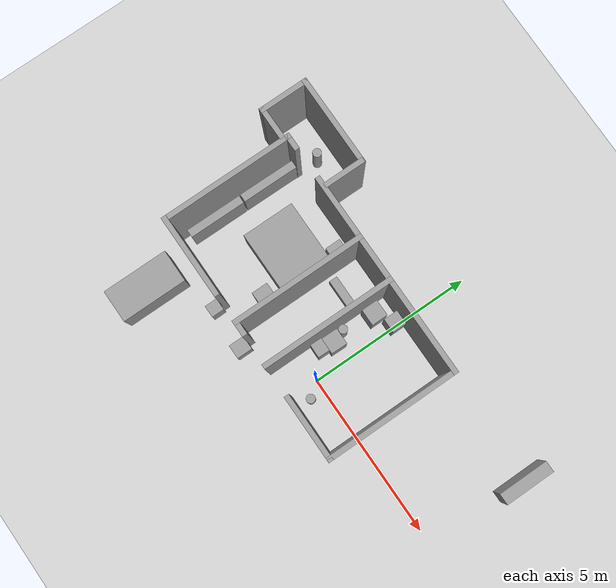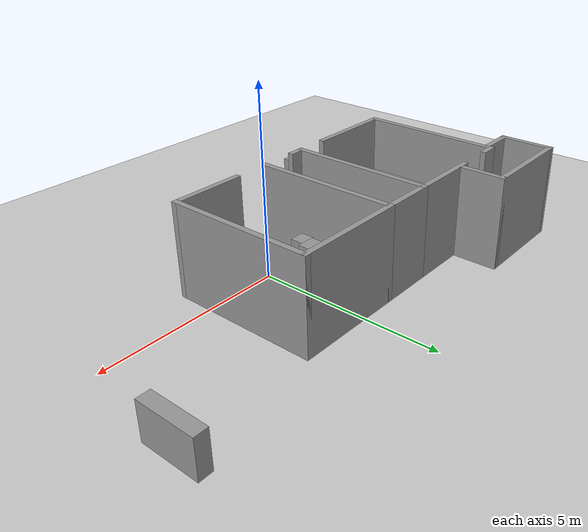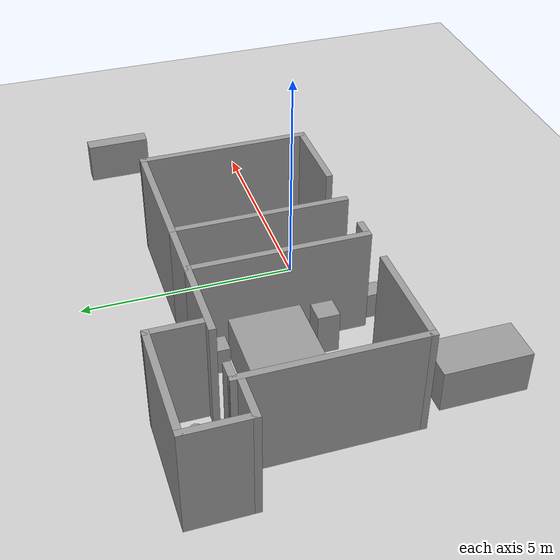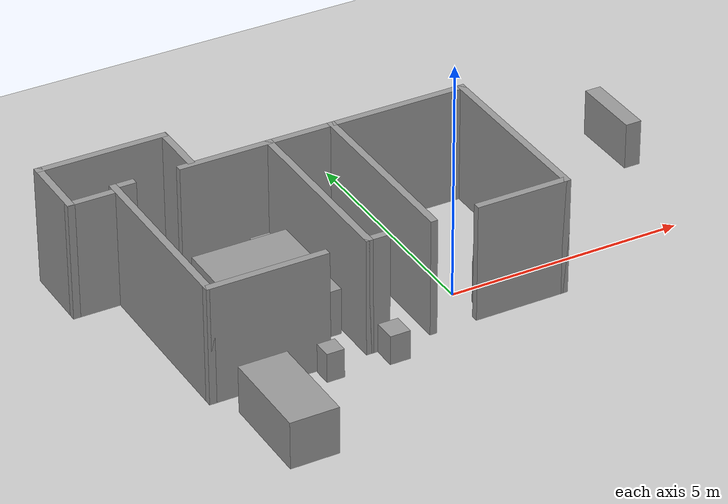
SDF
<sdf version="1.9">
 <world name="default">
  <model name="ground_plane">
   <static>true</static>
   <link name="link">
    <collision name="collision">
     <geometry><plane><normal>0 0 1</normal><size>100 100</size></plane></geometry>
     <surface><friction><ode><mu>100</mu><mu2>50</mu2></ode></friction></surface>
    </collision>
    <visual name="visual">
     <cast_shadows>false</cast_shadows>
     <geometry><plane><normal>0 0 1</normal><size>100 100</size></plane></geometry>
     <material>
      <script><uri>file://media/materials/scripts/gazebo.material</uri><name>Gazebo/Grey</name></script>
     </material>
    </visual>
   </link>
  </model>
  <model name="cma_escritorio">
   <pose>-1.8304 1.03024 0 0 0 0</pose>
   <link name="Wall_11">
    <collision name="Wall_11_Collision">
     <geometry><box><size>2 0.14999999999999999 2.5</size></box></geometry>
     <pose>0 0 1.25 0 0 0</pose>
    </collision>
    <visual name="Wall_11_Visual">
     <pose>0 0 1.25 0 0 0</pose>
     <geometry><box><size>2 0.14999999999999999 2.5</size></box></geometry>
     <material>
      <script><uri>file://media/materials/scripts/gazebo.material</uri><name>Gazebo/Grey</name></script>
      <ambient>1 1 1 1</ambient>
     </material>
    </visual>
    <pose>-1.3999999999999999 1.9299999999999999 0 0 0 3.1415899999999999</pose>
   </link>
   <link name="Wall_2">
    <collision name="Wall_2_Collision">
     <geometry><box><size>4 0.14999999999999999 2.5</size></box></geometry>
     <pose>0 0 1.25 0 0 0</pose>
    </collision>
    <visual name="Wall_2_Visual">
     <pose>0 0 1.25 0 0 0</pose>
     <geometry><box><size>4 0.14999999999999999 2.5</size></box></geometry>
     <material>
      <script><uri>file://media/materials/scripts/gazebo.material</uri><name>Gazebo/Grey</name></script>
      <ambient>1 1 1 1</ambient>
     </material>
    </visual>
    <pose>0.875 0.0050000000000000001 0 0 0 1.5708</pose>
   </link>
   <link name="Wall_25">
    <collision name="Wall_25_Collision">
     <geometry><box><size>2.5 0.14999999999999999 2.5</size></box></geometry>
     <pose>0 0 1.25 0 0 0</pose>
    </collision>
    <visual name="Wall_25_Visual">
     <pose>0 0 1.25 0 0 0</pose>
     <geometry><box><size>2.5 0.14999999999999999 2.5</size></box></geometry>
     <material>
      <script><uri>file://media/materials/scripts/gazebo.material</uri><name>Gazebo/Grey</name></script>
      <ambient>1 1 1 1</ambient>
     </material>
    </visual>
    <pose>-2.5499999999999998 -1.9299999999999999 0 0 0 3.1415899999999999</pose>
   </link>
   <link name="Wall_26">
    <collision name="Wall_26_Collision">
     <geometry><box><size>4 0.14999999999999999 2.5</size></box></geometry>
     <pose>0 0 1.25 0 0 0</pose>
    </collision>
    <visual name="Wall_26_Visual">
     <pose>0 0 1.25 0 0 0</pose>
     <geometry><box><size>4 0.14999999999999999 2.5</size></box></geometry>
     <material>
      <script><uri>file://media/materials/scripts/gazebo.material</uri><name>Gazebo/Grey</name></script>
      <ambient>1 1 1 1</ambient>
     </material>
    </visual>
    <pose>-3.7250000000000001 -0.0050000000000000001 0 0 0 1.5708</pose>
   </link>
   <link name="Wall_27">
    <collision name="Wall_27_Collision">
     <geometry><box><size>0.5 0.14999999999999999 2.5</size></box></geometry>
     <pose>0 0 1.25 0 0 0</pose>
    </collision>
    <visual name="Wall_27_Visual">
     <pose>0 0 1.25 0 0 0</pose>
     <geometry><box><size>0.5 0.14999999999999999 2.5</size></box></geometry>
     <material>
      <script><uri>file://media/materials/scripts/gazebo.material</uri><name>Gazebo/Grey</name></script>
      <ambient>1 1 1 1</ambient>
     </material>
    </visual>
    <pose>-3.5499999999999998 1.9199999999999999 0 0 0 0</pose>
   </link>
   <link name="Wall_3">
    <collision name="Wall_3_Collision">
     <geometry><box><size>3 0.14999999999999999 2.5</size></box></geometry>
     <pose>0 0 1.25 0 0 0</pose>
    </collision>
    <visual name="Wall_3_Visual">
     <pose>0 0 1.25 0 0 0</pose>
     <geometry><box><size>3 0.14999999999999999 2.5</size></box></geometry>
     <material>
      <script><uri>file://media/materials/scripts/gazebo.material</uri><name>Gazebo/Grey</name></script>
      <ambient>1 1 1 1</ambient>
     </material>
    </visual>
    <pose>2.2999999999999998 1.9299999999999999 0 0 0 0</pose>
   </link>
   <link name="Wall_4">
    <collision name="Wall_4_Collision">
     <geometry><box><size>4 0.14999999999999999 2.5</size></box></geometry>
     <pose>0 0 1.25 0 0 0</pose>
    </collision>
    <visual name="Wall_4_Visual">
     <pose>0 0 1.25 0 0 0</pose>
     <geometry><box><size>4 0.14999999999999999 2.5</size></box></geometry>
     <material>
      <script><uri>file://media/materials/scripts/gazebo.material</uri><name>Gazebo/Grey</name></script>
      <ambient>1 1 1 1</ambient>
     </material>
    </visual>
    <pose>3.7250000000000001 0.0050000000000000001 0 0 0 -1.5708</pose>
   </link>
   <link name="Wall_5">
    <collision name="Wall_5_Collision">
     <geometry><box><size>2 0.14999999999999999 2.5</size></box></geometry>
     <pose>0 0 1.25 0 0 0</pose>
    </collision>
    <visual name="Wall_5_Visual">
     <pose>0 0 1.25 0 0 0</pose>
     <geometry><box><size>2 0.14999999999999999 2.5</size></box></geometry>
     <material>
      <script><uri>file://media/materials/scripts/gazebo.material</uri><name>Gazebo/Grey</name></script>
      <ambient>1 1 1 1</ambient>
     </material>
    </visual>
    <pose>2.7999999999999998 -1.9199999999999999 0 0 0 3.1415899999999999</pose>
   </link>
   <link name="Wall_7">
    <collision name="Wall_7_Collision">
     <geometry><box><size>1.5 0.14999999999999999 2.5</size></box></geometry>
     <pose>0 0 1.25 0 0 0</pose>
    </collision>
    <visual name="Wall_7_Visual">
     <pose>0 0 1.25 0 0 0</pose>
     <geometry><box><size>1.5 0.14999999999999999 2.5</size></box></geometry>
     <material>
      <script><uri>file://media/materials/scripts/gazebo.material</uri><name>Gazebo/Grey</name></script>
      <ambient>1 1 1 1</ambient>
     </material>
    </visual>
    <pose>0.20000000000000001 1.9299999999999999 0 0 0 3.1415899999999999</pose>
   </link>
   <link name="Wall_8">
    <collision name="Wall_8_Collision">
     <geometry><box><size>4 0.14999999999999999 2.5</size></box></geometry>
     <pose>0 0 1.25 0 0 0</pose>
    </collision>
    <visual name="Wall_8_Visual">
     <pose>0 0 1.25 0 0 0</pose>
     <geometry><box><size>4 0.14999999999999999 2.5</size></box></geometry>
     <material>
      <script><uri>file://media/materials/scripts/gazebo.material</uri><name>Gazebo/Grey</name></script>
      <ambient>1 1 1 1</ambient>
     </material>
    </visual>
    <pose>-0.47499999999999998 0.0050000000000000001 0 0 0 -1.5708</pose>
   </link>
   <link name="Wall_9">
    <collision name="Wall_9_Collision">
     <geometry><box><size>0.5 0.14999999999999999 2.5</size></box></geometry>
     <pose>0 0 1.25 0 0 0</pose>
    </collision>
    <visual name="Wall_9_Visual">
     <pose>0 0 1.25 0 0 0</pose>
     <geometry><box><size>0.5 0.14999999999999999 2.5</size></box></geometry>
     <material>
      <script><uri>file://media/materials/scripts/gazebo.material</uri><name>Gazebo/Grey</name></script>
      <ambient>1 1 1 1</ambient>
     </material>
    </visual>
    <pose>-0.29999999999999999 -1.9199999999999999 0 0 0 0</pose>
   </link>
   <static>true</static>
  </model>
  <model name="cma_banheiro">
   <pose>-5.2292800000000002 3.4870999999999999 0 0 0 0</pose>
   <link name="Wall_0">
    <collision name="Wall_0_Collision">
     <geometry><box><size>1 0.14999999999999999 2.5</size></box></geometry>
     <pose>0 0 1.25 0 0 0</pose>
    </collision>
    <visual name="Wall_0_Visual">
     <pose>0 0 1.25 0 0 0</pose>
     <geometry><box><size>1 0.14999999999999999 2.5</size></box></geometry>
     <material>
      <script><uri>file://media/materials/scripts/gazebo.material</uri><name>Gazebo/Grey</name></script>
      <ambient>1 1 1 1</ambient>
     </material>
    </visual>
    <pose>-0.875 -0.67500000000000004 0 0 0 3.1415899999999999</pose>
   </link>
   <link name="Wall_1">
    <collision name="Wall_1_Collision">
     <geometry><box><size>1.5 0.14999999999999999 2.5</size></box></geometry>
     <pose>0 0 1.25 0 0 0</pose>
    </collision>
    <visual name="Wall_1_Visual">
     <pose>0 0 1.25 0 0 0</pose>
     <geometry><box><size>1.5 0.14999999999999999 2.5</size></box></geometry>
     <material>
      <script><uri>file://media/materials/scripts/gazebo.material</uri><name>Gazebo/Grey</name></script>
      <ambient>1 1 1 1</ambient>
     </material>
    </visual>
    <pose>-1.3 0 0 0 0 1.5708</pose>
   </link>
   <link name="Wall_2">
    <collision name="Wall_2_Collision">
     <geometry><box><size>2.75 0.14999999999999999 2.5</size></box></geometry>
     <pose>0 0 1.25 0 0 0</pose>
    </collision>
    <visual name="Wall_2_Visual">
     <pose>0 0 1.25 0 0 0</pose>
     <geometry><box><size>2.75 0.14999999999999999 2.5</size></box></geometry>
     <material>
      <script><uri>file://media/materials/scripts/gazebo.material</uri><name>Gazebo/Grey</name></script>
      <ambient>1 1 1 1</ambient>
     </material>
    </visual>
    <pose>0 0.67500000000000004 0 0 0 0</pose>
   </link>
   <link name="Wall_4">
    <collision name="Wall_4_Collision">
     <geometry><box><size>1.25 0.14999999999999999 2.5</size></box></geometry>
     <pose>0 0 1.25 0 0 0</pose>
    </collision>
    <visual name="Wall_4_Visual">
     <pose>0 0 1.25 0 0 0</pose>
     <geometry><box><size>1.25 0.14999999999999999 2.5</size></box></geometry>
     <material>
      <script><uri>file://media/materials/scripts/gazebo.material</uri><name>Gazebo/Grey</name></script>
      <ambient>1 1 1 1</ambient>
     </material>
    </visual>
    <pose>1.3 0.125 0 0 0 -1.5708</pose>
   </link>
   <static>true</static>
  </model>
  <model name="cma_lixo">
   <link name="link_1">
    <pose>0.88296200000000002 1.81586 0.5 0 0 0</pose>
    <inertial>
     <mass>0.068764400000000003</mass>
     <inertia>
      <ixx>0.00602588</ixx>
      <ixy>0</ixy>
      <ixz>0</ixz>
      <iyy>0.00602588</iyy>
      <iyz>0</iyz>
      <izz>0.00059106800000000004</izz>
     </inertia>
    </inertial>
    <visual name="visual">
     <geometry><cylinder><radius>0.13111200000000001</radius><length>1</length></cylinder></geometry>
     <material>
      <lighting>true</lighting>
      <script><uri>file://media/materials/scripts/gazebo.material</uri><name>Gazebo/Grey</name></script>
      <ambient>0.300000012 0.300000012 0.300000012 1</ambient>
      <diffuse>0.699999988 0.699999988 0.699999988 1</diffuse>
      <specular>0.00999999978 0.00999999978 0.00999999978 1</specular>
      <emissive>0 0 0 1</emissive>
     </material>
    </visual>
    <collision name="collision">
     <geometry><cylinder><radius>0.13111200000000001</radius><length>1</length></cylinder></geometry>
     <surface>
      <friction>
       <ode><mu>1</mu><mu2>1</mu2><fdir1>0 0 0</fdir1><slip1>0</slip1><slip2>0</slip2></ode>
       <torsional>
        <coefficient>1</coefficient>
        <patch_radius>0</patch_radius>
        <surface_radius>0</surface_radius>
        <use_patch_radius>true</use_patch_radius>
        <ode><slip>0</slip></ode>
       </torsional>
      </friction>
      <bounce><restitution_coefficient>0</restitution_coefficient><threshold>1000000</threshold></bounce>
      <contact>
       <collide_without_contact>false</collide_without_contact>
       <collide_without_contact_bitmask>1</collide_without_contact_bitmask>
       <collide_bitmask>1</collide_bitmask>
       <ode>
        <soft_cfm>0</soft_cfm>
        <soft_erp>0.20000000000000001</soft_erp>
        <kp>10000000000000</kp>
        <kd>1</kd>
        <max_vel>0.01</max_vel>
        <min_depth>0</min_depth>
       </ode>
       <bullet>
        <split_impulse>true</split_impulse>
        <split_impulse_penetration_threshold>-0.01</split_impulse_penetration_threshold>
        <soft_cfm>0</soft_cfm>
        <soft_erp>0.20000000000000001</soft_erp>
        <kp>10000000000000</kp>
        <kd>1</kd>
       </bullet>
      </contact>
     </surface>
    </collision>
   </link>
   <static>false</static>
   <pose>-1.35785 -1.5254399999999999 -5.0000000000000004e-06 0 0 -0.54309700000000016</pose>
  </model>
  <model name="cma_gaveteiro_pequeno_0">
   <link name="link_0">
    <pose>0.25617400000000001 1.2505500000000001 0.5 0 0 0</pose>
    <inertial>
     <mass>0.18718599999999999</mass>
     <inertia>
      <ixx>0.018509999999999999</ixx>
      <ixy>0</ixy>
      <ixz>0</ixz>
      <iyy>0.018527600000000002</iyy>
      <iyz>0</iyz>
      <izz>0.00583981</izz>
     </inertia>
    </inertial>
    <visual name="visual">
     <geometry><box><size>0.43331700000000001 0.432002 1</size></box></geometry>
     <material>
      <lighting>true</lighting>
      <script><uri>file://media/materials/scripts/gazebo.material</uri><name>Gazebo/Grey</name></script>
      <ambient>0.300000012 0.300000012 0.300000012 1</ambient>
      <diffuse>0.699999988 0.699999988 0.699999988 1</diffuse>
      <specular>0.00999999978 0.00999999978 0.00999999978 1</specular>
      <emissive>0 0 0 1</emissive>
     </material>
    </visual>
    <collision name="collision">
     <geometry><box><size>0.43331700000000001 0.432002 1</size></box></geometry>
     <surface>
      <friction>
       <ode><mu>1</mu><mu2>1</mu2><fdir1>0 0 0</fdir1><slip1>0</slip1><slip2>0</slip2></ode>
       <torsional>
        <coefficient>1</coefficient>
        <patch_radius>0</patch_radius>
        <surface_radius>0</surface_radius>
        <use_patch_radius>true</use_patch_radius>
        <ode><slip>0</slip></ode>
       </torsional>
      </friction>
      <bounce><restitution_coefficient>0</restitution_coefficient><threshold>1000000</threshold></bounce>
      <contact>
       <collide_without_contact>false</collide_without_contact>
       <collide_without_contact_bitmask>1</collide_without_contact_bitmask>
       <collide_bitmask>1</collide_bitmask>
       <ode>
        <soft_cfm>0</soft_cfm>
        <soft_erp>0.20000000000000001</soft_erp>
        <kp>10000000000000</kp>
        <kd>1</kd>
        <max_vel>0.01</max_vel>
        <min_depth>0</min_depth>
       </ode>
       <bullet>
        <split_impulse>true</split_impulse>
        <split_impulse_penetration_threshold>-0.01</split_impulse_penetration_threshold>
        <soft_cfm>0</soft_cfm>
        <soft_erp>0.20000000000000001</soft_erp>
        <kp>10000000000000</kp>
        <kd>1</kd>
       </bullet>
      </contact>
     </surface>
    </collision>
   </link>
   <static>false</static>
   <pose>-0.33601199999999998 1.39513 0 0 -6.9999999999999999e-06 -3.4e-05</pose>
  </model>
  <model name="cma_gaveteiro">
   <link name="link_0">
    <pose>0 3.9999999999999998e-06 0 0 0 0</pose>
    <inertial>
     <mass>0.245086</mass>
     <inertia>
      <ixx>0.025418</ixx>
      <ixy>0</ixy>
      <ixz>0</ixz>
      <iyy>0.025441100000000001</iyy>
      <iyz>0</iyz>
      <izz>0.010011300000000001</izz>
     </inertia>
    </inertial>
    <visual name="visual">
     <geometry><box><size>0.49565700000000001 0.49449100000000001 1</size></box></geometry>
     <material>
      <lighting>true</lighting>
      <script><uri>file://media/materials/scripts/gazebo.material</uri><name>Gazebo/Grey</name></script>
      <ambient>0.300000012 0.300000012 0.300000012 1</ambient>
      <diffuse>0.699999988 0.699999988 0.699999988 1</diffuse>
      <specular>0.00999999978 0.00999999978 0.00999999978 1</specular>
      <emissive>0 0 0 1</emissive>
     </material>
    </visual>
    <collision name="collision">
     <geometry><box><size>0.49565700000000001 0.49449100000000001 1</size></box></geometry>
     <surface>
      <friction>
       <ode><mu>1</mu><mu2>1</mu2><fdir1>0 0 0</fdir1><slip1>0</slip1><slip2>0</slip2></ode>
       <torsional>
        <coefficient>1</coefficient>
        <patch_radius>0</patch_radius>
        <surface_radius>0</surface_radius>
        <use_patch_radius>true</use_patch_radius>
        <ode><slip>0</slip></ode>
       </torsional>
      </friction>
      <bounce><restitution_coefficient>0</restitution_coefficient><threshold>1000000</threshold></bounce>
      <contact>
       <collide_without_contact>false</collide_without_contact>
       <collide_without_contact_bitmask>1</collide_without_contact_bitmask>
       <collide_bitmask>1</collide_bitmask>
       <ode>
        <soft_cfm>0</soft_cfm>
        <soft_erp>0.20000000000000001</soft_erp>
        <kp>10000000000000</kp>
        <kd>1</kd>
        <max_vel>0.01</max_vel>
        <min_depth>0</min_depth>
       </ode>
       <bullet>
        <split_impulse>true</split_impulse>
        <split_impulse_penetration_threshold>-0.01</split_impulse_penetration_threshold>
        <soft_cfm>0</soft_cfm>
        <soft_erp>0.20000000000000001</soft_erp>
        <kp>10000000000000</kp>
        <kd>1</kd>
       </bullet>
      </contact>
     </surface>
    </collision>
   </link>
   <static>false</static>
   <pose>-0.59198700000000004 2.32619 0.50000100000000003 9.9999999999999995e-07 1.0000000000000004e-06 0.00067899999999999992</pose>
  </model>
  <model name="cma_gaveteiro_0">
   <link name="link_0">
    <pose>0 3.9999999999999998e-06 0 0 0 0</pose>
    <inertial>
     <mass>0.245086</mass>
     <inertia>
      <ixx>0.025418</ixx>
      <ixy>0</ixy>
      <ixz>0</ixz>
      <iyy>0.025441100000000001</iyy>
      <iyz>0</iyz>
      <izz>0.010011300000000001</izz>
     </inertia>
    </inertial>
    <visual name="visual">
     <geometry><box><size>0.49565700000000001 0.49449100000000001 1</size></box></geometry>
     <material>
      <lighting>true</lighting>
      <script><uri>file://media/materials/scripts/gazebo.material</uri><name>Gazebo/Grey</name></script>
      <ambient>0.300000012 0.300000012 0.300000012 1</ambient>
      <diffuse>0.699999988 0.699999988 0.699999988 1</diffuse>
      <specular>0.00999999978 0.00999999978 0.00999999978 1</specular>
      <emissive>0 0 0 1</emissive>
     </material>
    </visual>
    <collision name="collision">
     <geometry><box><size>0.49565700000000001 0.49449100000000001 1</size></box></geometry>
     <surface>
      <friction>
       <ode><mu>1</mu><mu2>1</mu2><fdir1>0 0 0</fdir1><slip1>0</slip1><slip2>0</slip2></ode>
       <torsional>
        <coefficient>1</coefficient>
        <patch_radius>0</patch_radius>
        <surface_radius>0</surface_radius>
        <use_patch_radius>true</use_patch_radius>
        <ode><slip>0</slip></ode>
       </torsional>
      </friction>
      <bounce><restitution_coefficient>0</restitution_coefficient><threshold>1000000</threshold></bounce>
      <contact>
       <collide_without_contact>false</collide_without_contact>
       <collide_without_contact_bitmask>1</collide_without_contact_bitmask>
       <collide_bitmask>1</collide_bitmask>
       <ode>
        <soft_cfm>0</soft_cfm>
        <soft_erp>0.20000000000000001</soft_erp>
        <kp>10000000000000</kp>
        <kd>1</kd>
        <max_vel>0.01</max_vel>
        <min_depth>0</min_depth>
       </ode>
       <bullet>
        <split_impulse>true</split_impulse>
        <split_impulse_penetration_threshold>-0.01</split_impulse_penetration_threshold>
        <soft_cfm>0</soft_cfm>
        <soft_erp>0.20000000000000001</soft_erp>
        <kp>10000000000000</kp>
        <kd>1</kd>
       </bullet>
      </contact>
     </surface>
    </collision>
   </link>
   <static>false</static>
   <pose>-0.578044 0.98382899999999995 0.5 0 0 -0.015392000000000001</pose>
  </model>
  <model name="cma_lixo_0">
   <link name="link_1">
    <pose>0.88296200000000002 1.81586 0.5 0 0 0</pose>
    <inertial>
     <mass>0.068764400000000003</mass>
     <inertia>
      <ixx>0.00602588</ixx>
      <ixy>0</ixy>
      <ixz>0</ixz>
      <iyy>0.00602588</iyy>
      <iyz>0</iyz>
      <izz>0.00059106800000000004</izz>
     </inertia>
    </inertial>
    <visual name="visual">
     <geometry><cylinder><radius>0.13111200000000001</radius><length>1</length></cylinder></geometry>
     <material>
      <lighting>true</lighting>
      <script><uri>file://media/materials/scripts/gazebo.material</uri><name>Gazebo/Grey</name></script>
      <ambient>0.300000012 0.300000012 0.300000012 1</ambient>
      <diffuse>0.699999988 0.699999988 0.699999988 1</diffuse>
      <specular>0.00999999978 0.00999999978 0.00999999978 1</specular>
      <emissive>0 0 0 1</emissive>
     </material>
    </visual>
    <collision name="collision">
     <geometry><cylinder><radius>0.13111200000000001</radius><length>1</length></cylinder></geometry>
     <surface>
      <friction>
       <ode><mu>1</mu><mu2>1</mu2><fdir1>0 0 0</fdir1><slip1>0</slip1><slip2>0</slip2></ode>
       <torsional>
        <coefficient>1</coefficient>
        <patch_radius>0</patch_radius>
        <surface_radius>0</surface_radius>
        <use_patch_radius>true</use_patch_radius>
        <ode><slip>0</slip></ode>
       </torsional>
      </friction>
      <bounce><restitution_coefficient>0</restitution_coefficient><threshold>1000000</threshold></bounce>
      <contact>
       <collide_without_contact>false</collide_without_contact>
       <collide_without_contact_bitmask>1</collide_without_contact_bitmask>
       <collide_bitmask>1</collide_bitmask>
       <ode>
        <soft_cfm>0</soft_cfm>
        <soft_erp>0.20000000000000001</soft_erp>
        <kp>10000000000000</kp>
        <kd>1</kd>
        <max_vel>0.01</max_vel>
        <min_depth>0</min_depth>
       </ode>
       <bullet>
        <split_impulse>true</split_impulse>
        <split_impulse_penetration_threshold>-0.01</split_impulse_penetration_threshold>
        <soft_cfm>0</soft_cfm>
        <soft_erp>0.20000000000000001</soft_erp>
        <kp>10000000000000</kp>
        <kd>1</kd>
       </bullet>
      </contact>
     </surface>
    </collision>
   </link>
   <static>false</static>
   <pose>-1.6093500000000001 -0.44273099999999999 -6.9999999999999999e-06 0 0 -0.0097769999999999992</pose>
  </model>
  <model name="cma_sofa2">
   <link name="link_0">
    <pose>-4.6680000000000001 -2.0060099999999998 0.5 0 0 0</pose>
    <inertial>
     <mass>1.9868300000000001</mass>
     <inertia>
      <ixx>0.81914900000000002</ixx>
      <ixy>0</ixy>
      <ixz>0</ixz>
      <iyy>0.33113799999999999</iyy>
      <iyz>0</iyz>
      <izz>0.81914900000000002</izz>
     </inertia>
    </inertial>
    <visual name="visual">
     <geometry><box><size>1 1.98682 1</size></box></geometry>
     <material>
      <lighting>true</lighting>
      <script><uri>file://media/materials/scripts/gazebo.material</uri><name>Gazebo/Grey</name></script>
      <ambient>0.300000012 0.300000012 0.300000012 1</ambient>
      <diffuse>0.699999988 0.699999988 0.699999988 1</diffuse>
      <specular>0.00999999978 0.00999999978 0.00999999978 1</specular>
      <emissive>0 0 0 1</emissive>
     </material>
    </visual>
    <collision name="collision">
     <geometry><box><size>1 1.98682 1</size></box></geometry>
     <surface>
      <friction>
       <ode><mu>1</mu><mu2>1</mu2><fdir1>0 0 0</fdir1><slip1>0</slip1><slip2>0</slip2></ode>
       <torsional>
        <coefficient>1</coefficient>
        <patch_radius>0</patch_radius>
        <surface_radius>0</surface_radius>
        <use_patch_radius>true</use_patch_radius>
        <ode><slip>0</slip></ode>
       </torsional>
      </friction>
      <bounce><restitution_coefficient>0</restitution_coefficient><threshold>1000000</threshold></bounce>
      <contact>
       <collide_without_contact>false</collide_without_contact>
       <collide_without_contact_bitmask>1</collide_without_contact_bitmask>
       <collide_bitmask>1</collide_bitmask>
       <ode>
        <soft_cfm>0</soft_cfm>
        <soft_erp>0.20000000000000001</soft_erp>
        <kp>10000000000000</kp>
        <kd>1</kd>
        <max_vel>0.01</max_vel>
        <min_depth>0</min_depth>
       </ode>
       <bullet>
        <split_impulse>true</split_impulse>
        <split_impulse_penetration_threshold>-0.01</split_impulse_penetration_threshold>
        <soft_cfm>0</soft_cfm>
        <soft_erp>0.20000000000000001</soft_erp>
        <kp>10000000000000</kp>
        <kd>1</kd>
       </bullet>
      </contact>
     </surface>
    </collision>
   </link>
   <static>false</static>
   <pose>-0.095322000000000004 -0.40786499999999998 1.8e-05 1.6155871338999022e-27 -3.0000000000000005e-06 -8.0000000000000013e-06</pose>
  </model>
  <model name="cma_bau_s">
   <link name="link_1">
    <pose>0.109594 0.27229300000000001 0 0 0 0</pose>
    <inertial>
     <mass>0.12547900000000001</mass>
     <inertia>
      <ixx>0.0064194300000000003</ixx>
      <ixy>0</ixy>
      <ixz>0</ixz>
      <iyy>0.0059753999999999996</iyy>
      <iyz>0</iyz>
      <izz>0.0042208499999999999</izz>
     </inertia>
    </inertial>
    <visual name="visual">
     <geometry><box><size>0.42496400000000001 0.47228300000000001 0.62511799999999995</size></box></geometry>
     <material>
      <lighting>true</lighting>
      <script><uri>file://media/materials/scripts/gazebo.material</uri><name>Gazebo/Grey</name></script>
      <ambient>0.300000012 0.300000012 0.300000012 1</ambient>
      <diffuse>0.699999988 0.699999988 0.699999988 1</diffuse>
      <specular>0.00999999978 0.00999999978 0.00999999978 1</specular>
      <emissive>0 0 0 1</emissive>
     </material>
    </visual>
    <collision name="collision">
     <geometry><box><size>0.42496400000000001 0.47228300000000001 0.62511799999999995</size></box></geometry>
     <surface>
      <friction>
       <ode><mu>1</mu><mu2>1</mu2><fdir1>0 0 0</fdir1><slip1>0</slip1><slip2>0</slip2></ode>
       <torsional>
        <coefficient>1</coefficient>
        <patch_radius>0</patch_radius>
        <surface_radius>0</surface_radius>
        <use_patch_radius>true</use_patch_radius>
        <ode><slip>0</slip></ode>
       </torsional>
      </friction>
      <bounce><restitution_coefficient>0</restitution_coefficient><threshold>1000000</threshold></bounce>
      <contact>
       <collide_without_contact>false</collide_without_contact>
       <collide_without_contact_bitmask>1</collide_without_contact_bitmask>
       <collide_bitmask>1</collide_bitmask>
       <ode>
        <soft_cfm>0</soft_cfm>
        <soft_erp>0.20000000000000001</soft_erp>
        <kp>10000000000000</kp>
        <kd>1</kd>
        <max_vel>0.01</max_vel>
        <min_depth>0</min_depth>
       </ode>
       <bullet>
        <split_impulse>true</split_impulse>
        <split_impulse_penetration_threshold>-0.01</split_impulse_penetration_threshold>
        <soft_cfm>0</soft_cfm>
        <soft_erp>0.20000000000000001</soft_erp>
        <kp>10000000000000</kp>
        <kd>1</kd>
       </bullet>
      </contact>
     </surface>
    </collision>
   </link>
   <static>false</static>
   <pose>-2.04277 -1.4857 0.31255899999999998 0 0 0.00079200000000000006</pose>
  </model>
  <model name="cma_apoio_s">
   <link name="link_1">
    <pose>-1.9376 -3.4655100000000001 0.5 0 0 0</pose>
    <inertial>
     <mass>0.087846300000000002</mass>
     <inertia>
      <ixx>0.0039269600000000002</ixx>
      <ixy>0</ixy>
      <ixz>0</ixz>
      <iyy>0.0038535599999999998</iyy>
      <iyz>0</iyz>
      <izz>0.0020587000000000001</izz>
     </inertia>
    </inertial>
    <visual name="visual">
     <geometry><box><size>0.36822300000000002 0.38159199999999999 0.62511799999999995</size></box></geometry>
     <material>
      <lighting>true</lighting>
      <script><uri>file://media/materials/scripts/gazebo.material</uri><name>Gazebo/Grey</name></script>
      <ambient>0.300000012 0.300000012 0.300000012 1</ambient>
      <diffuse>0.699999988 0.699999988 0.699999988 1</diffuse>
      <specular>0.00999999978 0.00999999978 0.00999999978 1</specular>
      <emissive>0 0 0 1</emissive>
     </material>
    </visual>
    <collision name="collision">
     <geometry><box><size>0.36822300000000002 0.38159199999999999 0.62511799999999995</size></box></geometry>
     <surface>
      <friction>
       <ode><mu>1</mu><mu2>1</mu2><fdir1>0 0 0</fdir1><slip1>0</slip1><slip2>0</slip2></ode>
       <torsional>
        <coefficient>1</coefficient>
        <patch_radius>0</patch_radius>
        <surface_radius>0</surface_radius>
        <use_patch_radius>true</use_patch_radius>
        <ode><slip>0</slip></ode>
       </torsional>
      </friction>
      <bounce><restitution_coefficient>0</restitution_coefficient><threshold>1000000</threshold></bounce>
      <contact>
       <collide_without_contact>false</collide_without_contact>
       <collide_without_contact_bitmask>1</collide_without_contact_bitmask>
       <collide_bitmask>1</collide_bitmask>
       <ode>
        <soft_cfm>0</soft_cfm>
        <soft_erp>0.20000000000000001</soft_erp>
        <kp>10000000000000</kp>
        <kd>1</kd>
        <max_vel>0.01</max_vel>
        <min_depth>0</min_depth>
       </ode>
       <bullet>
        <split_impulse>true</split_impulse>
        <split_impulse_penetration_threshold>-0.01</split_impulse_penetration_threshold>
        <soft_cfm>0</soft_cfm>
        <soft_erp>0.20000000000000001</soft_erp>
        <kp>10000000000000</kp>
        <kd>1</kd>
       </bullet>
      </contact>
     </surface>
    </collision>
   </link>
   <static>false</static>
   <pose>-1.30643 2.2695099999999999 -0.187469 -1.2000000000000002e-05 -9.0000000000000036e-06 -0.0015889999999999997</pose>
  </model>
  <model name="cma_cama_c_0">
   <link name="link_0">
    <pose>5.0000000000000004e-06 -3.9999999999999998e-06 0 0 0 0</pose>
    <inertial>
     <mass>3.1835800000000001</mass>
     <inertia>
      <ixx>0.93486199999999997</ixx>
      <ixy>0</ixy>
      <ixz>0</ixz>
      <iyy>1.3306899999999999</iyy>
      <iyz>0</iyz>
      <izz>1.7349600000000001</izz>
     </inertia>
    </inertial>
    <visual name="visual">
     <geometry><box><size>2.0039400000000001 1.58866 1</size></box></geometry>
     <material>
      <lighting>true</lighting>
      <script><uri>file://media/materials/scripts/gazebo.material</uri><name>Gazebo/Grey</name></script>
      <ambient>0.300000012 0.300000012 0.300000012 1</ambient>
      <diffuse>0.699999988 0.699999988 0.699999988 1</diffuse>
      <specular>0.00999999978 0.00999999978 0.00999999978 1</specular>
      <emissive>0 0 0 1</emissive>
     </material>
    </visual>
    <collision name="collision">
     <geometry><box><size>2.0039400000000001 1.58866 1</size></box></geometry>
     <surface>
      <friction>
       <ode><mu>1</mu><mu2>1</mu2><fdir1>0 0 0</fdir1><slip1>0</slip1><slip2>0</slip2></ode>
       <torsional>
        <coefficient>1</coefficient>
        <patch_radius>0</patch_radius>
        <surface_radius>0</surface_radius>
        <use_patch_radius>true</use_patch_radius>
        <ode><slip>0</slip></ode>
       </torsional>
      </friction>
      <bounce><restitution_coefficient>0</restitution_coefficient><threshold>1000000</threshold></bounce>
      <contact>
       <collide_without_contact>false</collide_without_contact>
       <collide_without_contact_bitmask>1</collide_without_contact_bitmask>
       <collide_bitmask>1</collide_bitmask>
       <ode>
        <soft_cfm>0</soft_cfm>
        <soft_erp>0.20000000000000001</soft_erp>
        <kp>10000000000000</kp>
        <kd>1</kd>
        <max_vel>0.01</max_vel>
        <min_depth>0</min_depth>
       </ode>
       <bullet>
        <split_impulse>true</split_impulse>
        <split_impulse_penetration_threshold>-0.01</split_impulse_penetration_threshold>
        <soft_cfm>0</soft_cfm>
        <soft_erp>0.20000000000000001</soft_erp>
        <kp>10000000000000</kp>
        <kd>1</kd>
       </bullet>
      </contact>
     </surface>
    </collision>
   </link>
   <static>false</static>
   <pose>-3.3823799999999999 1.3878699999999999 0.5 0 0 -2.0000000000000003e-06</pose>
  </model>
  <model name="cma_bau_s_0">
   <link name="link_1">
    <pose>0.109594 0.27229300000000001 0 0 0 0</pose>
    <inertial>
     <mass>0.12547900000000001</mass>
     <inertia>
      <ixx>0.0064194300000000003</ixx>
      <ixy>0</ixy>
      <ixz>0</ixz>
      <iyy>0.0059753999999999996</iyy>
      <iyz>0</iyz>
      <izz>0.0042208499999999999</izz>
     </inertia>
    </inertial>
    <visual name="visual">
     <geometry><box><size>0.42496400000000001 0.47228300000000001 0.62511799999999995</size></box></geometry>
     <material>
      <lighting>true</lighting>
      <script><uri>file://media/materials/scripts/gazebo.material</uri><name>Gazebo/Grey</name></script>
      <ambient>0.300000012 0.300000012 0.300000012 1</ambient>
      <diffuse>0.699999988 0.699999988 0.699999988 1</diffuse>
      <specular>0.00999999978 0.00999999978 0.00999999978 1</specular>
      <emissive>0 0 0 1</emissive>
     </material>
    </visual>
    <collision name="collision">
     <geometry><box><size>0.42496400000000001 0.47228300000000001 0.62511799999999995</size></box></geometry>
     <surface>
      <friction>
       <ode><mu>1</mu><mu2>1</mu2><fdir1>0 0 0</fdir1><slip1>0</slip1><slip2>0</slip2></ode>
       <torsional>
        <coefficient>1</coefficient>
        <patch_radius>0</patch_radius>
        <surface_radius>0</surface_radius>
        <use_patch_radius>true</use_patch_radius>
        <ode><slip>0</slip></ode>
       </torsional>
      </friction>
      <bounce><restitution_coefficient>0</restitution_coefficient><threshold>1000000</threshold></bounce>
      <contact>
       <collide_without_contact>false</collide_without_contact>
       <collide_without_contact_bitmask>1</collide_without_contact_bitmask>
       <collide_bitmask>1</collide_bitmask>
       <ode>
        <soft_cfm>0</soft_cfm>
        <soft_erp>0.20000000000000001</soft_erp>
        <kp>10000000000000</kp>
        <kd>1</kd>
        <max_vel>0.01</max_vel>
        <min_depth>0</min_depth>
       </ode>
       <bullet>
        <split_impulse>true</split_impulse>
        <split_impulse_penetration_threshold>-0.01</split_impulse_penetration_threshold>
        <soft_cfm>0</soft_cfm>
        <soft_erp>0.20000000000000001</soft_erp>
        <kp>10000000000000</kp>
        <kd>1</kd>
       </bullet>
      </contact>
     </surface>
    </collision>
   </link>
   <static>false</static>
   <pose>-2.7653300000000001 2.2426900000000001 0.31255899999999998 0 0 -0.00050500000000000002</pose>
  </model>
  <model name="cma_gaveteiro_1">
   <link name="link_0">
    <pose>0 3.9999999999999998e-06 0 0 0 0</pose>
    <inertial>
     <mass>0.245086</mass>
     <inertia>
      <ixx>0.025418</ixx>
      <ixy>0</ixy>
      <ixz>0</ixz>
      <iyy>0.025441100000000001</iyy>
      <iyz>0</iyz>
      <izz>0.010011300000000001</izz>
     </inertia>
    </inertial>
    <visual name="visual">
     <geometry><box><size>0.49565700000000001 0.49449100000000001 1</size></box></geometry>
     <material>
      <lighting>true</lighting>
      <script><uri>file://media/materials/scripts/gazebo.material</uri><name>Gazebo/Grey</name></script>
      <ambient>0.300000012 0.300000012 0.300000012 1</ambient>
      <diffuse>0.699999988 0.699999988 0.699999988 1</diffuse>
      <specular>0.00999999978 0.00999999978 0.00999999978 1</specular>
      <emissive>0 0 0 1</emissive>
     </material>
    </visual>
    <collision name="collision">
     <geometry><box><size>0.49565700000000001 0.49449100000000001 1</size></box></geometry>
     <surface>
      <friction>
       <ode><mu>1</mu><mu2>1</mu2><fdir1>0 0 0</fdir1><slip1>0</slip1><slip2>0</slip2></ode>
       <torsional>
        <coefficient>1</coefficient>
        <patch_radius>0</patch_radius>
        <surface_radius>0</surface_radius>
        <use_patch_radius>true</use_patch_radius>
        <ode><slip>0</slip></ode>
       </torsional>
      </friction>
      <bounce><restitution_coefficient>0</restitution_coefficient><threshold>1000000</threshold></bounce>
      <contact>
       <collide_without_contact>false</collide_without_contact>
       <collide_without_contact_bitmask>1</collide_without_contact_bitmask>
       <collide_bitmask>1</collide_bitmask>
       <ode>
        <soft_cfm>0</soft_cfm>
        <soft_erp>0.20000000000000001</soft_erp>
        <kp>10000000000000</kp>
        <kd>1</kd>
        <max_vel>0.01</max_vel>
        <min_depth>0</min_depth>
       </ode>
       <bullet>
        <split_impulse>true</split_impulse>
        <split_impulse_penetration_threshold>-0.01</split_impulse_penetration_threshold>
        <soft_cfm>0</soft_cfm>
        <soft_erp>0.20000000000000001</soft_erp>
        <kp>10000000000000</kp>
        <kd>1</kd>
       </bullet>
      </contact>
     </surface>
    </collision>
   </link>
   <static>false</static>
   <pose>-2.68859 0.131632 0.499998 7.9999999999999996e-06 2.0679515313825692e-25 -0.00042700000000000002</pose>
  </model>
  <model name="cma_armario_6">
   <link name="link_0">
    <pose>1.3215699999999999 0.88517800000000002 0.5 0 0 0</pose>
    <inertial>
     <mass>0.40237600000000001</mass>
     <inertia>
      <ixx>0.0353686</ixx>
      <ixy>0</ixy>
      <ixz>0</ixz>
      <iyy>0.13261600000000001</iyy>
      <iyz>0</iyz>
      <izz>0.100922</izz>
     </inertia>
    </inertial>
    <visual name="visual">
     <geometry><box><size>1.7187699999999999 0.234069 1</size></box></geometry>
     <material>
      <lighting>true</lighting>
      <script><uri>file://media/materials/scripts/gazebo.material</uri><name>Gazebo/Grey</name></script>
      <ambient>0.300000012 0.300000012 0.300000012 1</ambient>
      <diffuse>0.699999988 0.699999988 0.699999988 1</diffuse>
      <specular>0.00999999978 0.00999999978 0.00999999978 1</specular>
      <emissive>0 0 0 1</emissive>
     </material>
    </visual>
    <collision name="collision">
     <geometry><box><size>1.7187699999999999 0.234069 1</size></box></geometry>
     <surface>
      <friction>
       <ode><mu>1</mu><mu2>1</mu2><fdir1>0 0 0</fdir1><slip1>0</slip1><slip2>0</slip2></ode>
       <torsional>
        <coefficient>1</coefficient>
        <patch_radius>0</patch_radius>
        <surface_radius>0</surface_radius>
        <use_patch_radius>true</use_patch_radius>
        <ode><slip>0</slip></ode>
       </torsional>
      </friction>
      <bounce><restitution_coefficient>0</restitution_coefficient><threshold>1000000</threshold></bounce>
      <contact>
       <collide_without_contact>false</collide_without_contact>
       <collide_without_contact_bitmask>1</collide_without_contact_bitmask>
       <collide_bitmask>1</collide_bitmask>
       <ode>
        <soft_cfm>0</soft_cfm>
        <soft_erp>0.20000000000000001</soft_erp>
        <kp>10000000000000</kp>
        <kd>1</kd>
        <max_vel>0.01</max_vel>
        <min_depth>0</min_depth>
       </ode>
       <bullet>
        <split_impulse>true</split_impulse>
        <split_impulse_penetration_threshold>-0.01</split_impulse_penetration_threshold>
        <soft_cfm>0</soft_cfm>
        <soft_erp>0.20000000000000001</soft_erp>
        <kp>10000000000000</kp>
        <kd>1</kd>
       </bullet>
      </contact>
     </surface>
    </collision>
   </link>
   <static>false</static>
   <pose>-4.3872299999999997 0.68674999999999997 0 0 0 1.5646199999999999</pose>
  </model>
  <model name="cma_armario_7">
   <link name="link_0">
    <pose>1.3215699999999999 0.88517800000000002 0.5 0 0 0</pose>
    <inertial>
     <mass>0.40237600000000001</mass>
     <inertia>
      <ixx>0.0353686</ixx>
      <ixy>0</ixy>
      <ixz>0</ixz>
      <iyy>0.13261600000000001</iyy>
      <iyz>0</iyz>
      <izz>0.100922</izz>
     </inertia>
    </inertial>
    <visual name="visual">
     <geometry><box><size>1.7187699999999999 0.234069 1</size></box></geometry>
     <material>
      <lighting>true</lighting>
      <script><uri>file://media/materials/scripts/gazebo.material</uri><name>Gazebo/Grey</name></script>
      <ambient>0.300000012 0.300000012 0.300000012 1</ambient>
      <diffuse>0.699999988 0.699999988 0.699999988 1</diffuse>
      <specular>0.00999999978 0.00999999978 0.00999999978 1</specular>
      <emissive>0 0 0 1</emissive>
     </material>
    </visual>
    <collision name="collision">
     <geometry><box><size>1.7187699999999999 0.234069 1</size></box></geometry>
     <surface>
      <friction>
       <ode><mu>1</mu><mu2>1</mu2><fdir1>0 0 0</fdir1><slip1>0</slip1><slip2>0</slip2></ode>
       <torsional>
        <coefficient>1</coefficient>
        <patch_radius>0</patch_radius>
        <surface_radius>0</surface_radius>
        <use_patch_radius>true</use_patch_radius>
        <ode><slip>0</slip></ode>
       </torsional>
      </friction>
      <bounce><restitution_coefficient>0</restitution_coefficient><threshold>1000000</threshold></bounce>
      <contact>
       <collide_without_contact>false</collide_without_contact>
       <collide_without_contact_bitmask>1</collide_without_contact_bitmask>
       <collide_bitmask>1</collide_bitmask>
       <ode>
        <soft_cfm>0</soft_cfm>
        <soft_erp>0.20000000000000001</soft_erp>
        <kp>10000000000000</kp>
        <kd>1</kd>
        <max_vel>0.01</max_vel>
        <min_depth>0</min_depth>
       </ode>
       <bullet>
        <split_impulse>true</split_impulse>
        <split_impulse_penetration_threshold>-0.01</split_impulse_penetration_threshold>
        <soft_cfm>0</soft_cfm>
        <soft_erp>0.20000000000000001</soft_erp>
        <kp>10000000000000</kp>
        <kd>1</kd>
       </bullet>
      </contact>
     </surface>
    </collision>
   </link>
   <static>false</static>
   <pose>-4.3863399999999997 -1.0662799999999999 0 0 0 1.5674399999999999</pose>
  </model>
  <model name="cma_gaveteiro_pequeno_e">
   <link name="link_1">
    <pose>9.9999999999999995e-07 -3.0000000000000001e-06 0 0 0 0</pose>
    <inertial>
     <mass>0.14553199999999999</mass>
     <inertia>
      <ixx>0.0136813</ixx>
      <ixy>0</ixy>
      <ixz>0</ixz>
      <iyy>0.0141327</iyy>
      <iyz>0</iyz>
      <izz>0.0035586599999999999</izz>
     </inertia>
    </inertial>
    <visual name="visual">
     <geometry><box><size>0.40660000000000002 0.35791800000000001 1</size></box></geometry>
     <material>
      <lighting>true</lighting>
      <script><uri>file://media/materials/scripts/gazebo.material</uri><name>Gazebo/Grey</name></script>
      <ambient>0.300000012 0.300000012 0.300000012 1</ambient>
      <diffuse>0.699999988 0.699999988 0.699999988 1</diffuse>
      <specular>0.00999999978 0.00999999978 0.00999999978 1</specular>
      <emissive>0 0 0 1</emissive>
     </material>
    </visual>
    <collision name="collision">
     <geometry><box><size>0.40660000000000002 0.35791800000000001 1</size></box></geometry>
     <surface>
      <friction>
       <ode><mu>1</mu><mu2>1</mu2><fdir1>0 0 0</fdir1><slip1>0</slip1><slip2>0</slip2></ode>
       <torsional>
        <coefficient>1</coefficient>
        <patch_radius>0</patch_radius>
        <surface_radius>0</surface_radius>
        <use_patch_radius>true</use_patch_radius>
        <ode><slip>0</slip></ode>
       </torsional>
      </friction>
      <bounce><restitution_coefficient>0</restitution_coefficient><threshold>1000000</threshold></bounce>
      <contact>
       <collide_without_contact>false</collide_without_contact>
       <collide_without_contact_bitmask>1</collide_without_contact_bitmask>
       <collide_bitmask>1</collide_bitmask>
       <ode>
        <soft_cfm>0</soft_cfm>
        <soft_erp>0.20000000000000001</soft_erp>
        <kp>10000000000000</kp>
        <kd>1</kd>
        <max_vel>0.01</max_vel>
        <min_depth>0</min_depth>
       </ode>
       <bullet>
        <split_impulse>true</split_impulse>
        <split_impulse_penetration_threshold>-0.01</split_impulse_penetration_threshold>
        <soft_cfm>0</soft_cfm>
        <soft_erp>0.20000000000000001</soft_erp>
        <kp>10000000000000</kp>
        <kd>1</kd>
       </bullet>
      </contact>
     </surface>
    </collision>
   </link>
   <static>false</static>
   <pose>-0.65307800000000005 0.55873200000000001 0.50000100000000003 9.9999999999999995e-07 2.9999999999999997e-06 -0.015386</pose>
  </model>
  <model name="cma_armario_coz_150x20cm">
   <link name="link_1">
    <pose>7.1868600000000002 2.7524700000000002 0.5 0 0 0</pose>
    <inertial>
     <mass>0.53157299999999996</mass>
     <inertia>
      <ixx>0.147651</ixx>
      <ixy>0</ixy>
      <ixz>0</ixz>
      <iyy>0.0496628</iyy>
      <iyz>0</iyz>
      <izz>0.108718</izz>
     </inertia>
    </inertial>
    <visual name="visual">
     <geometry><box><size>0.34802300000000003 1.52746 1</size></box></geometry>
     <material>
      <lighting>true</lighting>
      <script><uri>file://media/materials/scripts/gazebo.material</uri><name>Gazebo/Grey</name></script>
      <ambient>0.300000012 0.300000012 0.300000012 1</ambient>
      <diffuse>0.699999988 0.699999988 0.699999988 1</diffuse>
      <specular>0.00999999978 0.00999999978 0.00999999978 1</specular>
      <emissive>0 0 0 1</emissive>
     </material>
    </visual>
    <collision name="collision">
     <geometry><box><size>0.34802300000000003 1.52746 1</size></box></geometry>
     <surface>
      <friction>
       <ode><mu>1</mu><mu2>1</mu2><fdir1>0 0 0</fdir1><slip1>0</slip1><slip2>0</slip2></ode>
       <torsional>
        <coefficient>1</coefficient>
        <patch_radius>0</patch_radius>
        <surface_radius>0</surface_radius>
        <use_patch_radius>true</use_patch_radius>
        <ode><slip>0</slip></ode>
       </torsional>
      </friction>
      <bounce><restitution_coefficient>0</restitution_coefficient><threshold>1000000</threshold></bounce>
      <contact>
       <collide_without_contact>false</collide_without_contact>
       <collide_without_contact_bitmask>1</collide_without_contact_bitmask>
       <collide_bitmask>1</collide_bitmask>
       <ode>
        <soft_cfm>0</soft_cfm>
        <soft_erp>0.20000000000000001</soft_erp>
        <kp>10000000000000</kp>
        <kd>1</kd>
        <max_vel>0.01</max_vel>
        <min_depth>0</min_depth>
       </ode>
       <bullet>
        <split_impulse>true</split_impulse>
        <split_impulse_penetration_threshold>-0.01</split_impulse_penetration_threshold>
        <soft_cfm>0</soft_cfm>
        <soft_erp>0.20000000000000001</soft_erp>
        <kp>10000000000000</kp>
        <kd>1</kd>
       </bullet>
      </contact>
     </surface>
    </collision>
   </link>
   <static>false</static>
   <pose>-1.72994 0.25918099999999999 0 0 0 0.0029559999999999994</pose>
  </model>
  <model name="cma_lixo_6">
   <link name="link_1">
    <pose>0.88296200000000002 1.81586 0.5 0 0 0</pose>
    <inertial>
     <mass>0.068764400000000003</mass>
     <inertia>
      <ixx>0.00602588</ixx>
      <ixy>0</ixy>
      <ixz>0</ixz>
      <iyy>0.00602588</iyy>
      <iyz>0</iyz>
      <izz>0.00059106800000000004</izz>
     </inertia>
    </inertial>
    <visual name="visual">
     <geometry><cylinder><radius>0.13111200000000001</radius><length>1</length></cylinder></geometry>
     <material>
      <lighting>true</lighting>
      <script><uri>file://media/materials/scripts/gazebo.material</uri><name>Gazebo/Grey</name></script>
      <ambient>0.300000012 0.300000012 0.300000012 1</ambient>
      <diffuse>0.699999988 0.699999988 0.699999988 1</diffuse>
      <specular>0.00999999978 0.00999999978 0.00999999978 1</specular>
      <emissive>0 0 0 1</emissive>
     </material>
    </visual>
    <collision name="collision">
     <geometry><cylinder><radius>0.13111200000000001</radius><length>1</length></cylinder></geometry>
     <surface>
      <friction>
       <ode><mu>1</mu><mu2>1</mu2><fdir1>0 0 0</fdir1><slip1>0</slip1><slip2>0</slip2></ode>
       <torsional>
        <coefficient>1</coefficient>
        <patch_radius>0</patch_radius>
        <surface_radius>0</surface_radius>
        <use_patch_radius>true</use_patch_radius>
        <ode><slip>0</slip></ode>
       </torsional>
      </friction>
      <bounce><restitution_coefficient>0</restitution_coefficient><threshold>1000000</threshold></bounce>
      <contact>
       <collide_without_contact>false</collide_without_contact>
       <collide_without_contact_bitmask>1</collide_without_contact_bitmask>
       <collide_bitmask>1</collide_bitmask>
       <ode>
        <soft_cfm>0</soft_cfm>
        <soft_erp>0.20000000000000001</soft_erp>
        <kp>10000000000000</kp>
        <kd>1</kd>
        <max_vel>0.01</max_vel>
        <min_depth>0</min_depth>
       </ode>
       <bullet>
        <split_impulse>true</split_impulse>
        <split_impulse_penetration_threshold>-0.01</split_impulse_penetration_threshold>
        <soft_cfm>0</soft_cfm>
        <soft_erp>0.20000000000000001</soft_erp>
        <kp>10000000000000</kp>
        <kd>1</kd>
       </bullet>
      </contact>
     </surface>
    </collision>
   </link>
   <static>false</static>
   <pose>-5.5547300000000002 1.5976900000000001 -3.9999999999999998e-06 0 0 0.25579599999999997</pose>
  </model>
  <model name="unit_box_9">
   <pose>-1.5684800000000001 1.9795100000000001 0.218442 0 0 0</pose>
   <link name="link">
    <inertial>
     <mass>1</mass>
     <inertia>
      <ixx>0.16666700000000001</ixx>
      <ixy>0</ixy>
      <ixz>0</ixz>
      <iyy>0.16666700000000001</iyy>
      <iyz>0</iyz>
      <izz>0.16666700000000001</izz>
     </inertia>
    </inertial>
    <collision name="collision"><geometry><box><size>1 0.250997 0.436884</size></box></geometry></collision>
    <visual name="visual">
     <geometry><box><size>1 0.250997 0.436884</size></box></geometry>
     <material>
      <script><name>Gazebo/Grey</name><uri>file://media/materials/scripts/gazebo.material</uri></script>
     </material>
    </visual>
   </link>
  </model>
 </world>
</sdf>
